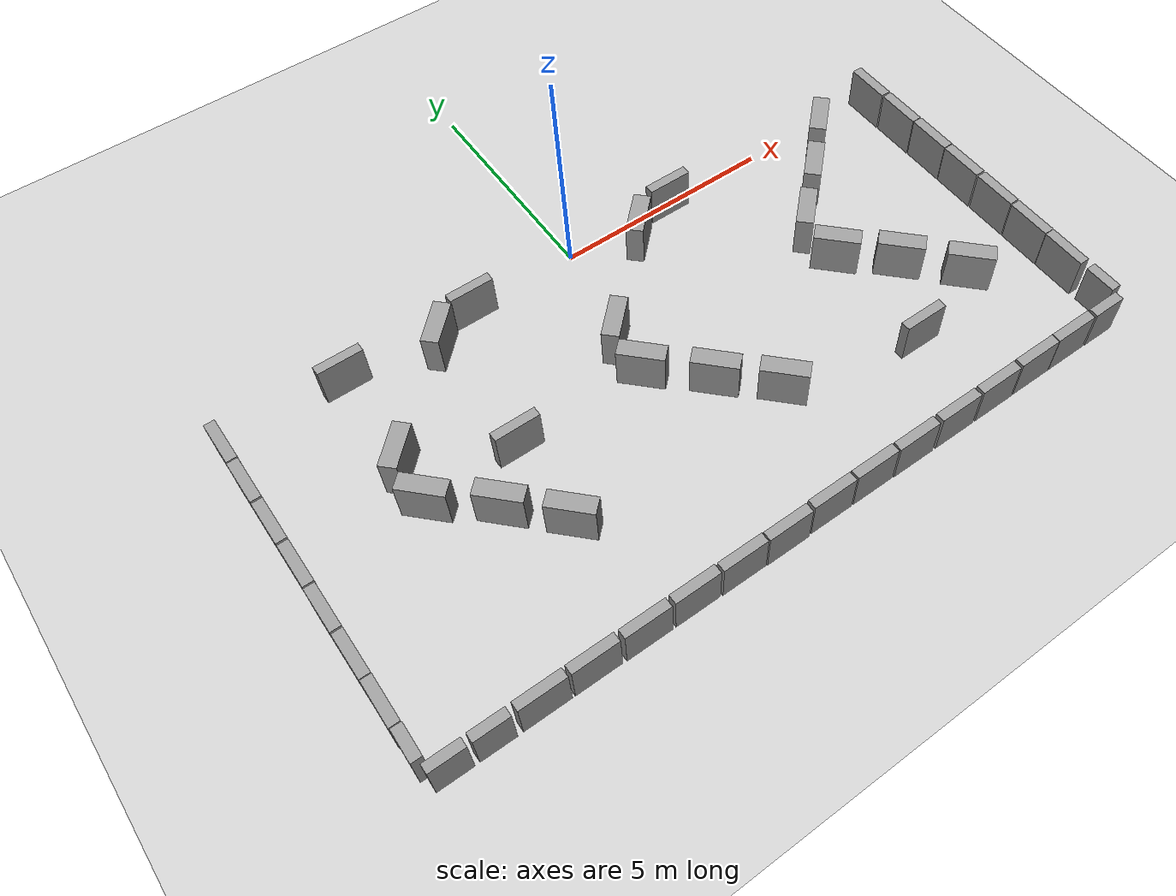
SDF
<sdf version="1.6">
 <world name="default">
  <model name="ground_plane">
   <static>1</static>
   <static>1</static>
   <link name="link">
    <collision name="collision">
     <geometry><plane><normal>0 0 1</normal><size>100 100</size></plane></geometry>
     <surface><friction><ode><mu>100</mu><mu2>50</mu2></ode></friction></surface>
    </collision>
    <visual name="visual">
     <cast_shadows>0</cast_shadows>
     <geometry><plane><normal>0 0 1</normal><size>100 100</size></plane></geometry>
     <material>
      <script><uri>file://media/materials/scripts/gazebo.material</uri><name>Gazebo/Grey</name></script>
     </material>
    </visual>
   </link>
  </model>
  <model name="unit_box_0_clone_7">
   <pose>8.11276 -0.44932 0.5 1e-06 1e-06 0.000293</pose>
   <link name="link">
    <inertial>
     <mass>1</mass>
     <inertia>
      <ixx>0.166667</ixx>
      <ixy>0</ixy>
      <ixz>0</ixz>
      <iyy>0.166667</iyy>
      <iyz>0</iyz>
      <izz>0.166667</izz>
     </inertia>
    </inertial>
    <collision name="collision"><geometry><box><size>0.230819 1 1</size></box></geometry></collision>
    <visual name="visual">
     <geometry><box><size>0.230819 1 1</size></box></geometry>
     <material>
      <script><name>Gazebo/Grey</name><uri>file://media/materials/scripts/gazebo.material</uri></script>
     </material>
    </visual>
   </link>
  </model>
  <model name="unit_box_0_clone_8">
   <pose>8.11912 -1.48629 0.5 1e-06 1e-06 0.000293</pose>
   <link name="link">
    <inertial>
     <mass>1</mass>
     <inertia>
      <ixx>0.166667</ixx>
      <ixy>0</ixy>
      <ixz>0</ixz>
      <iyy>0.166667</iyy>
      <iyz>0</iyz>
      <izz>0.166667</izz>
     </inertia>
    </inertial>
    <collision name="collision"><geometry><box><size>0.230819 1 1</size></box></geometry></collision>
    <visual name="visual">
     <geometry><box><size>0.230819 1 1</size></box></geometry>
     <material>
      <script><name>Gazebo/Grey</name><uri>file://media/materials/scripts/gazebo.material</uri></script>
     </material>
    </visual>
   </link>
  </model>
  <model name="unit_box_0_clone_9">
   <pose>8.12548 -2.5042 0.5 1e-06 1e-06 0.000293</pose>
   <link name="link">
    <inertial>
     <mass>1</mass>
     <inertia>
      <ixx>0.166667</ixx>
      <ixy>0</ixy>
      <ixz>0</ixz>
      <iyy>0.166667</iyy>
      <iyz>0</iyz>
      <izz>0.166667</izz>
     </inertia>
    </inertial>
    <collision name="collision"><geometry><box><size>0.230819 1 1</size></box></geometry></collision>
    <visual name="visual">
     <geometry><box><size>0.230819 1 1</size></box></geometry>
     <material>
      <script><name>Gazebo/Grey</name><uri>file://media/materials/scripts/gazebo.material</uri></script>
     </material>
    </visual>
   </link>
  </model>
  <model name="unit_box_0_clone_10">
   <pose>8.12331 -3.52223 0.5 1e-06 1e-06 0.000293</pose>
   <link name="link">
    <inertial>
     <mass>1</mass>
     <inertia>
      <ixx>0.166667</ixx>
      <ixy>0</ixy>
      <ixz>0</ixz>
      <iyy>0.166667</iyy>
      <iyz>0</iyz>
      <izz>0.166667</izz>
     </inertia>
    </inertial>
    <collision name="collision"><geometry><box><size>0.230819 1 1</size></box></geometry></collision>
    <visual name="visual">
     <geometry><box><size>0.230819 1 1</size></box></geometry>
     <material>
      <script><name>Gazebo/Grey</name><uri>file://media/materials/scripts/gazebo.material</uri></script>
     </material>
    </visual>
   </link>
  </model>
  <model name="unit_box_0_clone_11">
   <pose>8.1233 -4.56316 0.5 1e-06 1e-06 0.000293</pose>
   <link name="link">
    <inertial>
     <mass>1</mass>
     <inertia>
      <ixx>0.166667</ixx>
      <ixy>0</ixy>
      <ixz>0</ixz>
      <iyy>0.166667</iyy>
      <iyz>0</iyz>
      <izz>0.166667</izz>
     </inertia>
    </inertial>
    <collision name="collision"><geometry><box><size>0.230819 1 1</size></box></geometry></collision>
    <visual name="visual">
     <geometry><box><size>0.230819 1 1</size></box></geometry>
     <material>
      <script><name>Gazebo/Grey</name><uri>file://media/materials/scripts/gazebo.material</uri></script>
     </material>
    </visual>
   </link>
  </model>
  <model name="unit_box_0_clone_12">
   <pose>8.11815 -5.59377 0.5 1e-06 1e-06 0.000293</pose>
   <link name="link">
    <inertial>
     <mass>1</mass>
     <inertia>
      <ixx>0.166667</ixx>
      <ixy>0</ixy>
      <ixz>0</ixz>
      <iyy>0.166667</iyy>
      <iyz>0</iyz>
      <izz>0.166667</izz>
     </inertia>
    </inertial>
    <collision name="collision"><geometry><box><size>0.230819 1 1</size></box></geometry></collision>
    <visual name="visual">
     <geometry><box><size>0.230819 1 1</size></box></geometry>
     <material>
      <script><name>Gazebo/Grey</name><uri>file://media/materials/scripts/gazebo.material</uri></script>
     </material>
    </visual>
   </link>
  </model>
  <model name="unit_box_0_clone_13">
   <pose>8.11333 -6.60776 0.5 0 0 -0.00544</pose>
   <link name="link">
    <inertial>
     <mass>1</mass>
     <inertia>
      <ixx>0.166667</ixx>
      <ixy>0</ixy>
      <ixz>0</ixz>
      <iyy>0.166667</iyy>
      <iyz>0</iyz>
      <izz>0.166667</izz>
     </inertia>
    </inertial>
    <collision name="collision"><geometry><box><size>0.230819 1 1</size></box></geometry></collision>
    <visual name="visual">
     <geometry><box><size>0.230819 1 1</size></box></geometry>
     <material>
      <script><name>Gazebo/Grey</name><uri>file://media/materials/scripts/gazebo.material</uri></script>
     </material>
    </visual>
   </link>
  </model>
  <model name="unit_box_clone_15_clone_0">
   <pose>6.71207 -8.13123 0.5 0 -0 0.000219</pose>
   <link name="link">
    <inertial>
     <mass>1</mass>
     <inertia>
      <ixx>0.166667</ixx>
      <ixy>0</ixy>
      <ixz>0</ixz>
      <iyy>0.166667</iyy>
      <iyz>0</iyz>
      <izz>0.166667</izz>
     </inertia>
    </inertial>
    <collision name="collision"><geometry><box><size>1 0.210541 1</size></box></geometry></collision>
    <visual name="visual">
     <geometry><box><size>1 0.210541 1</size></box></geometry>
     <material>
      <script><name>Gazebo/Grey</name><uri>file://media/materials/scripts/gazebo.material</uri></script>
     </material>
    </visual>
   </link>
  </model>
  <model name="unit_box_clone_15_clone_1">
   <pose>5.69715 -8.13122 0.5 0 -0 0.000219</pose>
   <link name="link">
    <inertial>
     <mass>1</mass>
     <inertia>
      <ixx>0.166667</ixx>
      <ixy>0</ixy>
      <ixz>0</ixz>
      <iyy>0.166667</iyy>
      <iyz>0</iyz>
      <izz>0.166667</izz>
     </inertia>
    </inertial>
    <collision name="collision"><geometry><box><size>1 0.210541 1</size></box></geometry></collision>
    <visual name="visual">
     <geometry><box><size>1 0.210541 1</size></box></geometry>
     <material>
      <script><name>Gazebo/Grey</name><uri>file://media/materials/scripts/gazebo.material</uri></script>
     </material>
    </visual>
   </link>
  </model>
  <model name="unit_box_clone_15_clone_2">
   <pose>4.63881 -8.1374 0.5 0 -0 0.000219</pose>
   <link name="link">
    <inertial>
     <mass>1</mass>
     <inertia>
      <ixx>0.166667</ixx>
      <ixy>0</ixy>
      <ixz>0</ixz>
      <iyy>0.166667</iyy>
      <iyz>0</iyz>
      <izz>0.166667</izz>
     </inertia>
    </inertial>
    <collision name="collision"><geometry><box><size>1 0.210541 1</size></box></geometry></collision>
    <visual name="visual">
     <geometry><box><size>1 0.210541 1</size></box></geometry>
     <material>
      <script><name>Gazebo/Grey</name><uri>file://media/materials/scripts/gazebo.material</uri></script>
     </material>
    </visual>
   </link>
  </model>
  <model name="unit_box_clone_15_clone_3">
   <pose>3.57975 -8.1374 0.5 0 -0 0.000219</pose>
   <link name="link">
    <inertial>
     <mass>1</mass>
     <inertia>
      <ixx>0.166667</ixx>
      <ixy>0</ixy>
      <ixz>0</ixz>
      <iyy>0.166667</iyy>
      <iyz>0</iyz>
      <izz>0.166667</izz>
     </inertia>
    </inertial>
    <collision name="collision"><geometry><box><size>1 0.210541 1</size></box></geometry></collision>
    <visual name="visual">
     <geometry><box><size>1 0.210541 1</size></box></geometry>
     <material>
      <script><name>Gazebo/Grey</name><uri>file://media/materials/scripts/gazebo.material</uri></script>
     </material>
    </visual>
   </link>
  </model>
  <model name="unit_box_clone_15_clone_4">
   <pose>2.49815 -8.13739 0.5 0 -0 0.000219</pose>
   <link name="link">
    <inertial>
     <mass>1</mass>
     <inertia>
      <ixx>0.166667</ixx>
      <ixy>0</ixy>
      <ixz>0</ixz>
      <iyy>0.166667</iyy>
      <iyz>0</iyz>
      <izz>0.166667</izz>
     </inertia>
    </inertial>
    <collision name="collision"><geometry><box><size>1 0.210541 1</size></box></geometry></collision>
    <visual name="visual">
     <geometry><box><size>1 0.210541 1</size></box></geometry>
     <material>
      <script><name>Gazebo/Grey</name><uri>file://media/materials/scripts/gazebo.material</uri></script>
     </material>
    </visual>
   </link>
  </model>
  <model name="unit_box_clone_15_clone_5">
   <pose>1.46162 -8.12612 0.5 0 -0 0.000219</pose>
   <link name="link">
    <inertial>
     <mass>1</mass>
     <inertia>
      <ixx>0.166667</ixx>
      <ixy>0</ixy>
      <ixz>0</ixz>
      <iyy>0.166667</iyy>
      <iyz>0</iyz>
      <izz>0.166667</izz>
     </inertia>
    </inertial>
    <collision name="collision"><geometry><box><size>1 0.210541 1</size></box></geometry></collision>
    <visual name="visual">
     <geometry><box><size>1 0.210541 1</size></box></geometry>
     <material>
      <script><name>Gazebo/Grey</name><uri>file://media/materials/scripts/gazebo.material</uri></script>
     </material>
    </visual>
   </link>
  </model>
  <model name="unit_box_clone_15_clone_6">
   <pose>0.425088 -8.12611 0.5 0 -0 0.000219</pose>
   <link name="link">
    <inertial>
     <mass>1</mass>
     <inertia>
      <ixx>0.166667</ixx>
      <ixy>0</ixy>
      <ixz>0</ixz>
      <iyy>0.166667</iyy>
      <iyz>0</iyz>
      <izz>0.166667</izz>
     </inertia>
    </inertial>
    <collision name="collision"><geometry><box><size>1 0.210541 1</size></box></geometry></collision>
    <visual name="visual">
     <geometry><box><size>1 0.210541 1</size></box></geometry>
     <material>
      <script><name>Gazebo/Grey</name><uri>file://media/materials/scripts/gazebo.material</uri></script>
     </material>
    </visual>
   </link>
  </model>
  <model name="unit_box_clone_15_clone_7">
   <pose>-0.633974 -8.14866 0.5 0 -0 0.000219</pose>
   <link name="link">
    <inertial>
     <mass>1</mass>
     <inertia>
      <ixx>0.166667</ixx>
      <ixy>0</ixy>
      <ixz>0</ixz>
      <iyy>0.166667</iyy>
      <iyz>0</iyz>
      <izz>0.166667</izz>
     </inertia>
    </inertial>
    <collision name="collision"><geometry><box><size>1 0.210541 1</size></box></geometry></collision>
    <visual name="visual">
     <geometry><box><size>1 0.210541 1</size></box></geometry>
     <material>
      <script><name>Gazebo/Grey</name><uri>file://media/materials/scripts/gazebo.material</uri></script>
     </material>
    </visual>
   </link>
  </model>
  <model name="unit_box_clone_15_clone_8">
   <pose>-1.65923 -8.13738 0.5 0 -0 0.000219</pose>
   <link name="link">
    <inertial>
     <mass>1</mass>
     <inertia>
      <ixx>0.166667</ixx>
      <ixy>0</ixy>
      <ixz>0</ixz>
      <iyy>0.166667</iyy>
      <iyz>0</iyz>
      <izz>0.166667</izz>
     </inertia>
    </inertial>
    <collision name="collision"><geometry><box><size>1 0.210541 1</size></box></geometry></collision>
    <visual name="visual">
     <geometry><box><size>1 0.210541 1</size></box></geometry>
     <material>
      <script><name>Gazebo/Grey</name><uri>file://media/materials/scripts/gazebo.material</uri></script>
     </material>
    </visual>
   </link>
  </model>
  <model name="unit_box_clone_15_clone_9">
   <pose>-2.70703 -8.12613 0.5 0 -0 0.000219</pose>
   <link name="link">
    <inertial>
     <mass>1</mass>
     <inertia>
      <ixx>0.166667</ixx>
      <ixy>0</ixy>
      <ixz>0</ixz>
      <iyy>0.166667</iyy>
      <iyz>0</iyz>
      <izz>0.166667</izz>
     </inertia>
    </inertial>
    <collision name="collision"><geometry><box><size>1 0.210541 1</size></box></geometry></collision>
    <visual name="visual">
     <geometry><box><size>1 0.210541 1</size></box></geometry>
     <material>
      <script><name>Gazebo/Grey</name><uri>file://media/materials/scripts/gazebo.material</uri></script>
     </material>
    </visual>
   </link>
  </model>
  <model name="unit_box_clone_15_clone_10">
   <pose>-3.77736 -8.12612 0.5 0 -0 0.000219</pose>
   <link name="link">
    <inertial>
     <mass>1</mass>
     <inertia>
      <ixx>0.166667</ixx>
      <ixy>0</ixy>
      <ixz>0</ixz>
      <iyy>0.166667</iyy>
      <iyz>0</iyz>
      <izz>0.166667</izz>
     </inertia>
    </inertial>
    <collision name="collision"><geometry><box><size>1 0.210541 1</size></box></geometry></collision>
    <visual name="visual">
     <geometry><box><size>1 0.210541 1</size></box></geometry>
     <material>
      <script><name>Gazebo/Grey</name><uri>file://media/materials/scripts/gazebo.material</uri></script>
     </material>
    </visual>
   </link>
  </model>
  <model name="unit_box_clone_15_clone_11">
   <pose>-4.85896 -8.11486 0.5 0 -0 0.000219</pose>
   <link name="link">
    <inertial>
     <mass>1</mass>
     <inertia>
      <ixx>0.166667</ixx>
      <ixy>0</ixy>
      <ixz>0</ixz>
      <iyy>0.166667</iyy>
      <iyz>0</iyz>
      <izz>0.166667</izz>
     </inertia>
    </inertial>
    <collision name="collision"><geometry><box><size>1 0.210541 1</size></box></geometry></collision>
    <visual name="visual">
     <geometry><box><size>1 0.210541 1</size></box></geometry>
     <material>
      <script><name>Gazebo/Grey</name><uri>file://media/materials/scripts/gazebo.material</uri></script>
     </material>
    </visual>
   </link>
  </model>
  <model name="unit_box_clone_15_clone_12">
   <pose>-5.91802 -8.11485 0.5 0 -0 0.000219</pose>
   <link name="link">
    <inertial>
     <mass>1</mass>
     <inertia>
      <ixx>0.166667</ixx>
      <ixy>0</ixy>
      <ixz>0</ixz>
      <iyy>0.166667</iyy>
      <iyz>0</iyz>
      <izz>0.166667</izz>
     </inertia>
    </inertial>
    <collision name="collision"><geometry><box><size>1 0.210541 1</size></box></geometry></collision>
    <visual name="visual">
     <geometry><box><size>1 0.210541 1</size></box></geometry>
     <material>
      <script><name>Gazebo/Grey</name><uri>file://media/materials/scripts/gazebo.material</uri></script>
     </material>
    </visual>
   </link>
  </model>
  <model name="unit_box_0_clone_4_clone_7">
   <pose>-8.12609 -0.518034 0.5 1e-06 1e-06 0.000293</pose>
   <link name="link">
    <inertial>
     <mass>1</mass>
     <inertia>
      <ixx>0.166667</ixx>
      <ixy>0</ixy>
      <ixz>0</ixz>
      <iyy>0.166667</iyy>
      <iyz>0</iyz>
      <izz>0.166667</izz>
     </inertia>
    </inertial>
    <collision name="collision"><geometry><box><size>0.230819 1 1</size></box></geometry></collision>
    <visual name="visual">
     <geometry><box><size>0.230819 1 1</size></box></geometry>
     <material>
      <script><name>Gazebo/Grey</name><uri>file://media/materials/scripts/gazebo.material</uri></script>
     </material>
    </visual>
   </link>
  </model>
  <model name="unit_box_0_clone_4_clone_8">
   <pose>-8.13284 -1.54445 0.5 1e-06 1e-06 0.000293</pose>
   <link name="link">
    <inertial>
     <mass>1</mass>
     <inertia>
      <ixx>0.166667</ixx>
      <ixy>0</ixy>
      <ixz>0</ixz>
      <iyy>0.166667</iyy>
      <iyz>0</iyz>
      <izz>0.166667</izz>
     </inertia>
    </inertial>
    <collision name="collision"><geometry><box><size>0.230819 1 1</size></box></geometry></collision>
    <visual name="visual">
     <geometry><box><size>0.230819 1 1</size></box></geometry>
     <material>
      <script><name>Gazebo/Grey</name><uri>file://media/materials/scripts/gazebo.material</uri></script>
     </material>
    </visual>
   </link>
  </model>
  <model name="unit_box_0_clone_4_clone_9">
   <pose>-8.13285 -2.58439 0.5 1e-06 1e-06 0.000293</pose>
   <link name="link">
    <inertial>
     <mass>1</mass>
     <inertia>
      <ixx>0.166667</ixx>
      <ixy>0</ixy>
      <ixz>0</ixz>
      <iyy>0.166667</iyy>
      <iyz>0</iyz>
      <izz>0.166667</izz>
     </inertia>
    </inertial>
    <collision name="collision"><geometry><box><size>0.230819 1 1</size></box></geometry></collision>
    <visual name="visual">
     <geometry><box><size>0.230819 1 1</size></box></geometry>
     <material>
      <script><name>Gazebo/Grey</name><uri>file://media/materials/scripts/gazebo.material</uri></script>
     </material>
    </visual>
   </link>
  </model>
  <model name="unit_box_0_clone_4_clone_10">
   <pose>-8.13285 -3.62431 0.5 1e-06 1e-06 0.000293</pose>
   <link name="link">
    <inertial>
     <mass>1</mass>
     <inertia>
      <ixx>0.166667</ixx>
      <ixy>0</ixy>
      <ixz>0</ixz>
      <iyy>0.166667</iyy>
      <iyz>0</iyz>
      <izz>0.166667</izz>
     </inertia>
    </inertial>
    <collision name="collision"><geometry><box><size>0.230819 1 1</size></box></geometry></collision>
    <visual name="visual">
     <geometry><box><size>0.230819 1 1</size></box></geometry>
     <material>
      <script><name>Gazebo/Grey</name><uri>file://media/materials/scripts/gazebo.material</uri></script>
     </material>
    </visual>
   </link>
  </model>
  <model name="unit_box_0_clone_4_clone_11">
   <pose>-8.1396 -4.65747 0.5 1e-06 1e-06 0.000293</pose>
   <link name="link">
    <inertial>
     <mass>1</mass>
     <inertia>
      <ixx>0.166667</ixx>
      <ixy>0</ixy>
      <ixz>0</ixz>
      <iyy>0.166667</iyy>
      <iyz>0</iyz>
      <izz>0.166667</izz>
     </inertia>
    </inertial>
    <collision name="collision"><geometry><box><size>0.230819 1 1</size></box></geometry></collision>
    <visual name="visual">
     <geometry><box><size>0.230819 1 1</size></box></geometry>
     <material>
      <script><name>Gazebo/Grey</name><uri>file://media/materials/scripts/gazebo.material</uri></script>
     </material>
    </visual>
   </link>
  </model>
  <model name="unit_box_0_clone_4_clone_12">
   <pose>-8.1396 -5.69064 0.5 1e-06 1e-06 0.000293</pose>
   <link name="link">
    <inertial>
     <mass>1</mass>
     <inertia>
      <ixx>0.166667</ixx>
      <ixy>0</ixy>
      <ixz>0</ixz>
      <iyy>0.166667</iyy>
      <iyz>0</iyz>
      <izz>0.166667</izz>
     </inertia>
    </inertial>
    <collision name="collision"><geometry><box><size>0.230819 1 1</size></box></geometry></collision>
    <visual name="visual">
     <geometry><box><size>0.230819 1 1</size></box></geometry>
     <material>
      <script><name>Gazebo/Grey</name><uri>file://media/materials/scripts/gazebo.material</uri></script>
     </material>
    </visual>
   </link>
  </model>
  <model name="unit_box_0_clone_4_clone_13">
   <pose>-8.14113 -6.70874 0.5 1e-06 1e-06 -0.008651</pose>
   <link name="link">
    <inertial>
     <mass>1</mass>
     <inertia>
      <ixx>0.166667</ixx>
      <ixy>0</ixy>
      <ixz>0</ixz>
      <iyy>0.166667</iyy>
      <iyz>0</iyz>
      <izz>0.166667</izz>
     </inertia>
    </inertial>
    <collision name="collision"><geometry><box><size>0.230819 1 1</size></box></geometry></collision>
    <visual name="visual">
     <geometry><box><size>0.230819 1 1</size></box></geometry>
     <material>
      <script><name>Gazebo/Grey</name><uri>file://media/materials/scripts/gazebo.material</uri></script>
     </material>
    </visual>
   </link>
  </model>
  <model name="unit_box_clone_11_clone_1_clone_0">
   <pose>-6.9088 -8.11956 0.499997 -3e-06 8e-06 -0.003399</pose>
   <link name="link">
    <inertial>
     <mass>1</mass>
     <inertia>
      <ixx>0.166667</ixx>
      <ixy>0</ixy>
      <ixz>0</ixz>
      <iyy>0.166667</iyy>
      <iyz>0</iyz>
      <izz>0.166667</izz>
     </inertia>
    </inertial>
    <collision name="collision"><geometry><box><size>0.750223 0.210541 1</size></box></geometry></collision>
    <visual name="visual">
     <geometry><box><size>0.750223 0.210541 1</size></box></geometry>
     <material>
      <script><name>Gazebo/Grey</name><uri>file://media/materials/scripts/gazebo.material</uri></script>
     </material>
    </visual>
   </link>
  </model>
  <model name="unit_box_0_clone_4_clone_13_clone_clone">
   <pose>-8.13833 -7.5766 0.499997 -7e-06 -3e-06 -0.016817</pose>
   <link name="link">
    <inertial>
     <mass>1</mass>
     <inertia>
      <ixx>0.166667</ixx>
      <ixy>0</ixy>
      <ixz>0</ixz>
      <iyy>0.166667</iyy>
      <iyz>0</iyz>
      <izz>0.166667</izz>
     </inertia>
    </inertial>
    <collision name="collision"><geometry><box><size>0.230819 0.700336 1</size></box></geometry></collision>
    <visual name="visual">
     <geometry><box><size>0.230819 0.700336 1</size></box></geometry>
     <material>
      <script><name>Gazebo/Grey</name><uri>file://media/materials/scripts/gazebo.material</uri></script>
     </material>
    </visual>
   </link>
  </model>
  <model name="unit_box_clone_11_clone_1_clone_0_clone">
   <pose>-7.75474 -8.12201 0.499997 -3e-06 8e-06 -0.003062</pose>
   <link name="link">
    <inertial>
     <mass>1</mass>
     <inertia>
      <ixx>0.166667</ixx>
      <ixy>0</ixy>
      <ixz>0</ixz>
      <iyy>0.166667</iyy>
      <iyz>0</iyz>
      <izz>0.166667</izz>
     </inertia>
    </inertial>
    <collision name="collision"><geometry><box><size>0.750223 0.210541 1</size></box></geometry></collision>
    <visual name="visual">
     <geometry><box><size>0.750223 0.210541 1</size></box></geometry>
     <material>
      <script><name>Gazebo/Grey</name><uri>file://media/materials/scripts/gazebo.material</uri></script>
     </material>
    </visual>
   </link>
  </model>
  <model name="unit_box_clone_11_clone_1_clone_2">
   <pose>7.64249 -8.13928 0.499997 2e-06 7e-06 -0.002365</pose>
   <link name="link">
    <inertial>
     <mass>1</mass>
     <inertia>
      <ixx>0.166667</ixx>
      <ixy>0</ixy>
      <ixz>0</ixz>
      <iyy>0.166667</iyy>
      <iyz>0</iyz>
      <izz>0.166667</izz>
     </inertia>
    </inertial>
    <collision name="collision"><geometry><box><size>0.750223 0.210541 1</size></box></geometry></collision>
    <visual name="visual">
     <geometry><box><size>0.750223 0.210541 1</size></box></geometry>
     <material>
      <script><name>Gazebo/Grey</name><uri>file://media/materials/scripts/gazebo.material</uri></script>
     </material>
    </visual>
   </link>
  </model>
  <model name="unit_box_0_clone_4_clone_13_clone_clone_clone">
   <pose>8.11858 -7.62156 0.5 1e-06 0 -0.00204</pose>
   <link name="link">
    <inertial>
     <mass>1</mass>
     <inertia>
      <ixx>0.166667</ixx>
      <ixy>0</ixy>
      <ixz>0</ixz>
      <iyy>0.166667</iyy>
      <iyz>0</iyz>
      <izz>0.166667</izz>
     </inertia>
    </inertial>
    <collision name="collision"><geometry><box><size>0.230819 0.700336 1</size></box></geometry></collision>
    <visual name="visual">
     <geometry><box><size>0.230819 0.700336 1</size></box></geometry>
     <material>
      <script><name>Gazebo/Grey</name><uri>file://media/materials/scripts/gazebo.material</uri></script>
     </material>
    </visual>
   </link>
  </model>
  <model name="unit_box_0_clone_4_clone_6_clone_clone_clone">
   <pose>-5.53803 -2.52002 0.499997 6e-06 -0 -0.790774</pose>
   <link name="link">
    <inertial>
     <mass>1</mass>
     <inertia>
      <ixx>0.166667</ixx>
      <ixy>0</ixy>
      <ixz>0</ixz>
      <iyy>0.166667</iyy>
      <iyz>0</iyz>
      <izz>0.166667</izz>
     </inertia>
    </inertial>
    <collision name="collision"><geometry><box><size>0.376 1 1</size></box></geometry></collision>
    <visual name="visual">
     <geometry><box><size>0.376 1 1</size></box></geometry>
     <material>
      <script><name>Gazebo/Grey</name><uri>file://media/materials/scripts/gazebo.material</uri></script>
     </material>
    </visual>
   </link>
  </model>
  <model name="unit_box_0_clone_4_clone_6_clone_clone_clone_1">
   <pose>-3.47187 -0.493282 0.499997 6e-06 -0 -0.790699</pose>
   <link name="link">
    <inertial>
     <mass>1</mass>
     <inertia>
      <ixx>0.166667</ixx>
      <ixy>0</ixy>
      <ixz>0</ixz>
      <iyy>0.166667</iyy>
      <iyz>0</iyz>
      <izz>0.166667</izz>
     </inertia>
    </inertial>
    <collision name="collision"><geometry><box><size>0.376 1 1</size></box></geometry></collision>
    <visual name="visual">
     <geometry><box><size>0.376 1 1</size></box></geometry>
     <material>
      <script><name>Gazebo/Grey</name><uri>file://media/materials/scripts/gazebo.material</uri></script>
     </material>
    </visual>
   </link>
  </model>
  <model name="unit_box_0_clone_4_clone_6_clone_clone_0">
   <pose>-5.55711 -3.56372 0.5 0 -0 0.766597</pose>
   <link name="link">
    <inertial>
     <mass>1</mass>
     <inertia>
      <ixx>0.166667</ixx>
      <ixy>0</ixy>
      <ixz>0</ixz>
      <iyy>0.166667</iyy>
      <iyz>0</iyz>
      <izz>0.166667</izz>
     </inertia>
    </inertial>
    <collision name="collision"><geometry><box><size>0.376 1 1</size></box></geometry></collision>
    <visual name="visual">
     <geometry><box><size>0.376 1 1</size></box></geometry>
     <material>
      <script><name>Gazebo/Grey</name><uri>file://media/materials/scripts/gazebo.material</uri></script>
     </material>
    </visual>
   </link>
  </model>
  <model name="unit_box_0_clone_4_clone_6_clone_clone_1">
   <pose>-4.47476 -4.50814 0.5 0 -0 0.76685</pose>
   <link name="link">
    <inertial>
     <mass>1</mass>
     <inertia>
      <ixx>0.166667</ixx>
      <ixy>0</ixy>
      <ixz>0</ixz>
      <iyy>0.166667</iyy>
      <iyz>0</iyz>
      <izz>0.166667</izz>
     </inertia>
    </inertial>
    <collision name="collision"><geometry><box><size>0.376 1 1</size></box></geometry></collision>
    <visual name="visual">
     <geometry><box><size>0.376 1 1</size></box></geometry>
     <material>
      <script><name>Gazebo/Grey</name><uri>file://media/materials/scripts/gazebo.material</uri></script>
     </material>
    </visual>
   </link>
  </model>
  <model name="unit_box_0_clone_4_clone_6_clone_clone_2">
   <pose>-3.54998 -5.49207 0.5 0 -0 0.766554</pose>
   <link name="link">
    <inertial>
     <mass>1</mass>
     <inertia>
      <ixx>0.166667</ixx>
      <ixy>0</ixy>
      <ixz>0</ixz>
      <iyy>0.166667</iyy>
      <iyz>0</iyz>
      <izz>0.166667</izz>
     </inertia>
    </inertial>
    <collision name="collision"><geometry><box><size>0.376 1 1</size></box></geometry></collision>
    <visual name="visual">
     <geometry><box><size>0.376 1 1</size></box></geometry>
     <material>
      <script><name>Gazebo/Grey</name><uri>file://media/materials/scripts/gazebo.material</uri></script>
     </material>
    </visual>
   </link>
  </model>
  <model name="unit_box_0_clone_4_clone_6_clone_clone_clone_1_clone_2">
   <pose>1.46021 -0.532934 0.5 0 0 -0.790585</pose>
   <link name="link">
    <inertial>
     <mass>1</mass>
     <inertia>
      <ixx>0.166667</ixx>
      <ixy>0</ixy>
      <ixz>0</ixz>
      <iyy>0.166667</iyy>
      <iyz>0</iyz>
      <izz>0.166667</izz>
     </inertia>
    </inertial>
    <collision name="collision"><geometry><box><size>0.376 1 1</size></box></geometry></collision>
    <visual name="visual">
     <geometry><box><size>0.376 1 1</size></box></geometry>
     <material>
      <script><name>Gazebo/Grey</name><uri>file://media/materials/scripts/gazebo.material</uri></script>
     </material>
    </visual>
   </link>
  </model>
  <model name="unit_box_0_clone_4_clone_6_clone_clone_clone_1_clone_4">
   <pose>-0.50978 -2.48694 0.5 0 0 -0.790511</pose>
   <link name="link">
    <inertial>
     <mass>1</mass>
     <inertia>
      <ixx>0.166667</ixx>
      <ixy>0</ixy>
      <ixz>0</ixz>
      <iyy>0.166667</iyy>
      <iyz>0</iyz>
      <izz>0.166667</izz>
     </inertia>
    </inertial>
    <collision name="collision"><geometry><box><size>0.376 1 1</size></box></geometry></collision>
    <visual name="visual">
     <geometry><box><size>0.376 1 1</size></box></geometry>
     <material>
      <script><name>Gazebo/Grey</name><uri>file://media/materials/scripts/gazebo.material</uri></script>
     </material>
    </visual>
   </link>
  </model>
  <model name="unit_box_0_clone_4_clone_6_clone_clone_6_clone">
   <pose>-0.557411 -3.4964 0.5 0 -0 0.766659</pose>
   <link name="link">
    <inertial>
     <mass>1</mass>
     <inertia>
      <ixx>0.166667</ixx>
      <ixy>0</ixy>
      <ixz>0</ixz>
      <iyy>0.166667</iyy>
      <iyz>0</iyz>
      <izz>0.166667</izz>
     </inertia>
    </inertial>
    <collision name="collision"><geometry><box><size>0.376 1 1</size></box></geometry></collision>
    <visual name="visual">
     <geometry><box><size>0.376 1 1</size></box></geometry>
     <material>
      <script><name>Gazebo/Grey</name><uri>file://media/materials/scripts/gazebo.material</uri></script>
     </material>
    </visual>
   </link>
  </model>
  <model name="unit_box_0_clone_4_clone_6_clone_clone_6_clone_0">
   <pose>0.499649 -4.52147 0.5 0 -0 0.766642</pose>
   <link name="link">
    <inertial>
     <mass>1</mass>
     <inertia>
      <ixx>0.166667</ixx>
      <ixy>0</ixy>
      <ixz>0</ixz>
      <iyy>0.166667</iyy>
      <iyz>0</iyz>
      <izz>0.166667</izz>
     </inertia>
    </inertial>
    <collision name="collision"><geometry><box><size>0.376 1 1</size></box></geometry></collision>
    <visual name="visual">
     <geometry><box><size>0.376 1 1</size></box></geometry>
     <material>
      <script><name>Gazebo/Grey</name><uri>file://media/materials/scripts/gazebo.material</uri></script>
     </material>
    </visual>
   </link>
  </model>
  <model name="unit_box_0_clone_4_clone_6_clone_clone_6_clone_1">
   <pose>1.4766 -5.48249 0.5 0 -0 0.766809</pose>
   <link name="link">
    <inertial>
     <mass>1</mass>
     <inertia>
      <ixx>0.166667</ixx>
      <ixy>0</ixy>
      <ixz>0</ixz>
      <iyy>0.166667</iyy>
      <iyz>0</iyz>
      <izz>0.166667</izz>
     </inertia>
    </inertial>
    <collision name="collision"><geometry><box><size>0.376 1 1</size></box></geometry></collision>
    <visual name="visual">
     <geometry><box><size>0.376 1 1</size></box></geometry>
     <material>
      <script><name>Gazebo/Grey</name><uri>file://media/materials/scripts/gazebo.material</uri></script>
     </material>
    </visual>
   </link>
  </model>
  <model name="unit_box_0_clone_4_clone_6_clone_clone_clone_1_clone_2_clone">
   <pose>6.4946 -0.523499 0.5 0 0 -0.789682</pose>
   <link name="link">
    <inertial>
     <mass>1</mass>
     <inertia>
      <ixx>0.166667</ixx>
      <ixy>0</ixy>
      <ixz>0</ixz>
      <iyy>0.166667</iyy>
      <iyz>0</iyz>
      <izz>0.166667</izz>
     </inertia>
    </inertial>
    <collision name="collision"><geometry><box><size>0.376 1 1</size></box></geometry></collision>
    <visual name="visual">
     <geometry><box><size>0.376 1 1</size></box></geometry>
     <material>
      <script><name>Gazebo/Grey</name><uri>file://media/materials/scripts/gazebo.material</uri></script>
     </material>
    </visual>
   </link>
  </model>
  <model name="unit_box_0_clone_4_clone_6_clone_clone_clone_1_clone_2_clone_0">
   <pose>5.50933 -1.52518 0.5 -0 -0 -0.789682</pose>
   <link name="link">
    <inertial>
     <mass>1</mass>
     <inertia>
      <ixx>0.166667</ixx>
      <ixy>0</ixy>
      <ixz>0</ixz>
      <iyy>0.166667</iyy>
      <iyz>0</iyz>
      <izz>0.166667</izz>
     </inertia>
    </inertial>
    <collision name="collision"><geometry><box><size>0.376 1 1</size></box></geometry></collision>
    <visual name="visual">
     <geometry><box><size>0.376 1 1</size></box></geometry>
     <material>
      <script><name>Gazebo/Grey</name><uri>file://media/materials/scripts/gazebo.material</uri></script>
     </material>
    </visual>
   </link>
  </model>
  <model name="unit_box_0_clone_4_clone_6_clone_clone_clone_1_clone_2_clone_1">
   <pose>4.49122 -2.49402 0.5 0 0 -0.789682</pose>
   <link name="link">
    <inertial>
     <mass>1</mass>
     <inertia>
      <ixx>0.166667</ixx>
      <ixy>0</ixy>
      <ixz>0</ixz>
      <iyy>0.166667</iyy>
      <iyz>0</iyz>
      <izz>0.166667</izz>
     </inertia>
    </inertial>
    <collision name="collision"><geometry><box><size>0.376 1 1</size></box></geometry></collision>
    <visual name="visual">
     <geometry><box><size>0.376 1 1</size></box></geometry>
     <material>
      <script><name>Gazebo/Grey</name><uri>file://media/materials/scripts/gazebo.material</uri></script>
     </material>
    </visual>
   </link>
  </model>
  <model name="unit_box_0_clone_4_clone_6_clone_clone_6_clone_clone">
   <pose>4.49125 -3.51207 0.499997 -7e-06 -0 0.766928</pose>
   <link name="link">
    <inertial>
     <mass>1</mass>
     <inertia>
      <ixx>0.166667</ixx>
      <ixy>0</ixy>
      <ixz>0</ixz>
      <iyy>0.166667</iyy>
      <iyz>0</iyz>
      <izz>0.166667</izz>
     </inertia>
    </inertial>
    <collision name="collision"><geometry><box><size>0.376 1 1</size></box></geometry></collision>
    <visual name="visual">
     <geometry><box><size>0.376 1 1</size></box></geometry>
     <material>
      <script><name>Gazebo/Grey</name><uri>file://media/materials/scripts/gazebo.material</uri></script>
     </material>
    </visual>
   </link>
  </model>
  <model name="unit_box_0_clone_4_clone_6_clone_clone_6_clone_clone_0">
   <pose>5.4764 -4.43178 0.5 0 -0 0.766704</pose>
   <link name="link">
    <inertial>
     <mass>1</mass>
     <inertia>
      <ixx>0.166667</ixx>
      <ixy>0</ixy>
      <ixz>0</ixz>
      <iyy>0.166667</iyy>
      <iyz>0</iyz>
      <izz>0.166667</izz>
     </inertia>
    </inertial>
    <collision name="collision"><geometry><box><size>0.376 1 1</size></box></geometry></collision>
    <visual name="visual">
     <geometry><box><size>0.376 1 1</size></box></geometry>
     <material>
      <script><name>Gazebo/Grey</name><uri>file://media/materials/scripts/gazebo.material</uri></script>
     </material>
    </visual>
   </link>
  </model>
  <model name="unit_box_0_clone_4_clone_6_clone_clone_6_clone_clone_1">
   <pose>6.46168 -5.51555 0.499997 -7e-06 4e-06 0.766637</pose>
   <link name="link">
    <inertial>
     <mass>1</mass>
     <inertia>
      <ixx>0.166667</ixx>
      <ixy>0</ixy>
      <ixz>0</ixz>
      <iyy>0.166667</iyy>
      <iyz>0</iyz>
      <izz>0.166667</izz>
     </inertia>
    </inertial>
    <collision name="collision"><geometry><box><size>0.376 1 1</size></box></geometry></collision>
    <visual name="visual">
     <geometry><box><size>0.376 1 1</size></box></geometry>
     <material>
      <script><name>Gazebo/Grey</name><uri>file://media/materials/scripts/gazebo.material</uri></script>
     </material>
    </visual>
   </link>
  </model>
  <model name="unit_box_clone_8_clone">
   <pose>2.51856 -0.129994 0.499999 -0 1e-06 0.000319</pose>
   <link name="link">
    <inertial>
     <mass>1</mass>
     <inertia>
      <ixx>0.166667</ixx>
      <ixy>0</ixy>
      <ixz>0</ixz>
      <iyy>0.166667</iyy>
      <iyz>0</iyz>
      <izz>0.166667</izz>
     </inertia>
    </inertial>
    <collision name="collision"><geometry><box><size>1 0.210541 1</size></box></geometry></collision>
    <visual name="visual">
     <geometry><box><size>1 0.210541 1</size></box></geometry>
     <material>
      <script><name>Gazebo/Grey</name><uri>file://media/materials/scripts/gazebo.material</uri></script>
     </material>
    </visual>
   </link>
  </model>
  <model name="unit_box_clone_8_clone_2">
   <pose>-2.48629 -0.130014 0.5 0 -0 0.000217</pose>
   <link name="link">
    <inertial>
     <mass>1</mass>
     <inertia>
      <ixx>0.166667</ixx>
      <ixy>0</ixy>
      <ixz>0</ixz>
      <iyy>0.166667</iyy>
      <iyz>0</iyz>
      <izz>0.166667</izz>
     </inertia>
    </inertial>
    <collision name="collision"><geometry><box><size>1 0.210541 1</size></box></geometry></collision>
    <visual name="visual">
     <geometry><box><size>1 0.210541 1</size></box></geometry>
     <material>
      <script><name>Gazebo/Grey</name><uri>file://media/materials/scripts/gazebo.material</uri></script>
     </material>
    </visual>
   </link>
  </model>
  <model name="unit_box_clone_8_clone_3">
   <pose>-5.47313 -0.13937 0.5 0 -0 0.000258</pose>
   <link name="link">
    <inertial>
     <mass>1</mass>
     <inertia>
      <ixx>0.166667</ixx>
      <ixy>0</ixy>
      <ixz>0</ixz>
      <iyy>0.166667</iyy>
      <iyz>0</iyz>
      <izz>0.166667</izz>
     </inertia>
    </inertial>
    <collision name="collision"><geometry><box><size>1 0.210541 1</size></box></geometry></collision>
    <visual name="visual">
     <geometry><box><size>1 0.210541 1</size></box></geometry>
     <material>
      <script><name>Gazebo/Grey</name><uri>file://media/materials/scripts/gazebo.material</uri></script>
     </material>
    </visual>
   </link>
  </model>
  <model name="unit_box_clone_8_clone_5">
   <pose>-3.48621 -3.47459 0.499999 -1e-06 2e-06 0.000191</pose>
   <link name="link">
    <inertial>
     <mass>1</mass>
     <inertia>
      <ixx>0.166667</ixx>
      <ixy>0</ixy>
      <ixz>0</ixz>
      <iyy>0.166667</iyy>
      <iyz>0</iyz>
      <izz>0.166667</izz>
     </inertia>
    </inertial>
    <collision name="collision"><geometry><box><size>1 0.210541 1</size></box></geometry></collision>
    <visual name="visual">
     <geometry><box><size>1 0.210541 1</size></box></geometry>
     <material>
      <script><name>Gazebo/Grey</name><uri>file://media/materials/scripts/gazebo.material</uri></script>
     </material>
    </visual>
   </link>
  </model>
  <model name="unit_box_clone_8_clone_8">
   <pose>4.50364 -6.14569 0.5 0 -0 0.000179</pose>
   <link name="link">
    <inertial>
     <mass>1</mass>
     <inertia>
      <ixx>0.166667</ixx>
      <ixy>0</ixy>
      <ixz>0</ixz>
      <iyy>0.166667</iyy>
      <iyz>0</iyz>
      <izz>0.166667</izz>
     </inertia>
    </inertial>
    <collision name="collision"><geometry><box><size>1 0.210541 1</size></box></geometry></collision>
    <visual name="visual">
     <geometry><box><size>1 0.210541 1</size></box></geometry>
     <material>
      <script><name>Gazebo/Grey</name><uri>file://media/materials/scripts/gazebo.material</uri></script>
     </material>
    </visual>
   </link>
  </model>
 </world>
</sdf>
